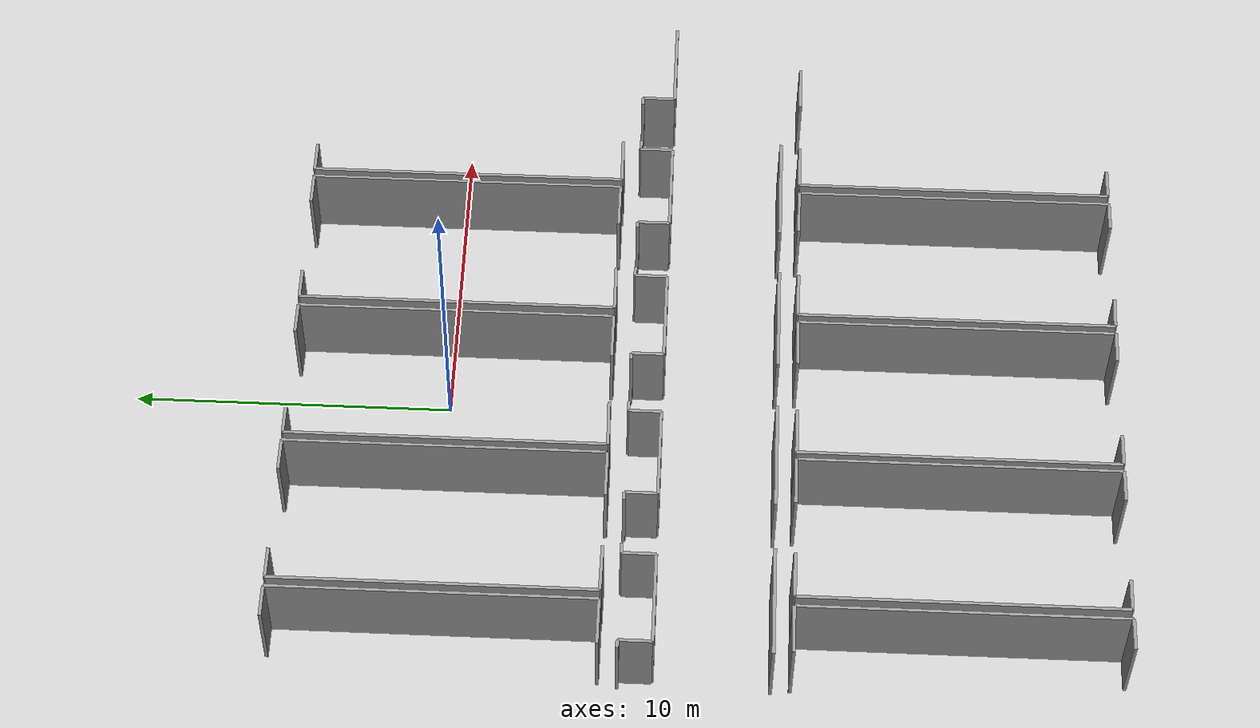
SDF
<sdf version="1.6">
 <world name="default">
  <model name="ground_plane">
   <static>1</static>
   <link name="link">
    <collision name="collision">
     <geometry><plane><normal>0 0 1</normal><size>100 100</size></plane></geometry>
     <surface><friction><ode><mu>100</mu><mu2>50</mu2></ode></friction></surface>
    </collision>
    <visual name="visual">
     <cast_shadows>0</cast_shadows>
     <geometry><plane><normal>0 0 1</normal><size>100 100</size></plane></geometry>
     <material>
      <script><uri>file://media/materials/scripts/gazebo.material</uri><name>Gazebo/Grey</name></script>
     </material>
    </visual>
   </link>
  </model>
  <model name="50055639">
   <static>1</static>
   <link name="Wall_206">
    <collision name="Wall_206_Collision">
     <geometry><box><size>0.253874763579 0.1 2.5</size></box></geometry>
     <pose>0.12693738179 0 1.25 0 0 0</pose>
    </collision>
    <visual name="Wall_206_Visual">
     <pose>0.12693738179 0 1.25 0 0 0</pose>
     <geometry><box><size>0.253874763579 0.1 2.5</size></box></geometry>
     <material>
      <script><uri>file://media/materials/scripts/gazebo.material</uri><name>Gazebo/Grey</name></script>
      <ambient>1 1 1 1</ambient>
     </material>
    </visual>
    <pose>60.6296094137 -26.5515429239 0 0 0 0.0</pose>
   </link>
   <link name="Wall_207">
    <collision name="Wall_207_Collision">
     <geometry><box><size>1.03784003351 0.1 2.5</size></box></geometry>
     <pose>0.518920016756 0 1.25 0 0 0</pose>
    </collision>
    <visual name="Wall_207_Visual">
     <pose>0.518920016756 0 1.25 0 0 0</pose>
     <geometry><box><size>1.03784003351 0.1 2.5</size></box></geometry>
     <material>
      <script><uri>file://media/materials/scripts/gazebo.material</uri><name>Gazebo/Grey</name></script>
      <ambient>1 1 1 1</ambient>
     </material>
    </visual>
    <pose>60.8834841773 -26.5515429239 0 0 0 -1.57079632679</pose>
   </link>
   <link name="Wall_208">
    <collision name="Wall_208_Collision">
     <geometry><box><size>2.98797902994 0.1 2.5</size></box></geometry>
     <pose>1.49398951497 0 1.25 0 0 0</pose>
    </collision>
    <visual name="Wall_208_Visual">
     <pose>1.49398951497 0 1.25 0 0 0</pose>
     <geometry><box><size>2.98797902994 0.1 2.5</size></box></geometry>
     <material>
      <script><uri>file://media/materials/scripts/gazebo.material</uri><name>Gazebo/Grey</name></script>
      <ambient>1 1 1 1</ambient>
     </material>
    </visual>
    <pose>60.8834841773 -27.5893829574 0 0 0 0.0</pose>
   </link>
   <link name="Wall_209">
    <collision name="Wall_209_Collision">
     <geometry><box><size>1.04050571853 0.1 2.5</size></box></geometry>
     <pose>0.520252859265 0 1.25 0 0 0</pose>
    </collision>
    <visual name="Wall_209_Visual">
     <pose>0.520252859265 0 1.25 0 0 0</pose>
     <geometry><box><size>1.04050571853 0.1 2.5</size></box></geometry>
     <material>
      <script><uri>file://media/materials/scripts/gazebo.material</uri><name>Gazebo/Grey</name></script>
      <ambient>1 1 1 1</ambient>
     </material>
    </visual>
    <pose>63.8714632072 -27.5893829574 0 0 0 1.57079632679</pose>
   </link>
   <link name="Wall_210">
    <collision name="Wall_210_Collision">
     <geometry><box><size>0.330037192653 0.1 2.5</size></box></geometry>
     <pose>0.165018596326 0 1.25 0 0 0</pose>
    </collision>
    <visual name="Wall_210_Visual">
     <pose>0.165018596326 0 1.25 0 0 0</pose>
     <geometry><box><size>0.330037192653 0.1 2.5</size></box></geometry>
     <material>
      <script><uri>file://media/materials/scripts/gazebo.material</uri><name>Gazebo/Grey</name></script>
      <ambient>1 1 1 1</ambient>
     </material>
    </visual>
    <pose>63.8714632072 -26.5488772389 0 0 0 0.0</pose>
   </link>
   <link name="Wall_211">
    <collision name="Wall_211_Collision">
     <geometry><box><size>0.252351514998 0.1 2.5</size></box></geometry>
     <pose>0.126175757499 0 1.25 0 0 0</pose>
    </collision>
    <visual name="Wall_211_Visual">
     <pose>0.126175757499 0 1.25 0 0 0</pose>
     <geometry><box><size>0.252351514998 0.1 2.5</size></box></geometry>
     <material>
      <script><uri>file://media/materials/scripts/gazebo.material</uri><name>Gazebo/Grey</name></script>
      <ambient>1 1 1 1</ambient>
     </material>
    </visual>
    <pose>65.7644803818 -26.5488772389 0 0 0 0.0</pose>
   </link>
   <link name="Wall_212">
    <collision name="Wall_212_Collision">
     <geometry><box><size>1.01867248886 0.1 2.5</size></box></geometry>
     <pose>0.509336244431 0 1.25 0 0 0</pose>
    </collision>
    <visual name="Wall_212_Visual">
     <pose>0.509336244431 0 1.25 0 0 0</pose>
     <geometry><box><size>1.01867248886 0.1 2.5</size></box></geometry>
     <material>
      <script><uri>file://media/materials/scripts/gazebo.material</uri><name>Gazebo/Grey</name></script>
      <ambient>1 1 1 1</ambient>
     </material>
    </visual>
    <pose>66.0168318968 -26.5488772389 0 0 0 -1.57079632679</pose>
   </link>
   <link name="Wall_213">
    <collision name="Wall_213_Collision">
     <geometry><box><size>2.97883953846 0.1 2.5</size></box></geometry>
     <pose>1.48941976923 0 1.25 0 0 0</pose>
    </collision>
    <visual name="Wall_213_Visual">
     <pose>1.48941976923 0 1.25 0 0 0</pose>
     <geometry><box><size>2.97883953846 0.1 2.5</size></box></geometry>
     <material>
      <script><uri>file://media/materials/scripts/gazebo.material</uri><name>Gazebo/Grey</name></script>
      <ambient>1 1 1 1</ambient>
     </material>
    </visual>
    <pose>66.0168318968 -27.5675497277 0 0 0 0.0</pose>
   </link>
   <link name="Wall_214">
    <collision name="Wall_214_Collision">
     <geometry><box><size>1.00344000305 0.1 2.5</size></box></geometry>
     <pose>0.501720001523 0 1.25 0 0 0</pose>
    </collision>
    <visual name="Wall_214_Visual">
     <pose>0.501720001523 0 1.25 0 0 0</pose>
     <geometry><box><size>1.00344000305 0.1 2.5</size></box></geometry>
     <material>
      <script><uri>file://media/materials/scripts/gazebo.material</uri><name>Gazebo/Grey</name></script>
      <ambient>1 1 1 1</ambient>
     </material>
    </visual>
    <pose>68.9956714353 -27.5675497277 0 0 0 1.57079632679</pose>
   </link>
   <link name="Wall_215">
    <collision name="Wall_215_Collision">
     <geometry><box><size>0.334480001016 0.1 2.5</size></box></geometry>
     <pose>0.167240000508 0 1.25 0 0 0</pose>
    </collision>
    <visual name="Wall_215_Visual">
     <pose>0.167240000508 0 1.25 0 0 0</pose>
     <geometry><box><size>0.334480001016 0.1 2.5</size></box></geometry>
     <material>
      <script><uri>file://media/materials/scripts/gazebo.material</uri><name>Gazebo/Grey</name></script>
      <ambient>1 1 1 1</ambient>
     </material>
    </visual>
    <pose>68.9956714353 -26.5641097247 0 0 0 0.0</pose>
   </link>
   <link name="Wall_216">
    <collision name="Wall_216_Collision">
     <geometry><box><size>0.230264410566 0.1 2.5</size></box></geometry>
     <pose>0.115132205283 0 1.25 0 0 0</pose>
    </collision>
    <visual name="Wall_216_Visual">
     <pose>0.115132205283 0 1.25 0 0 0</pose>
     <geometry><box><size>0.230264410566 0.1 2.5</size></box></geometry>
     <material>
      <script><uri>file://media/materials/scripts/gazebo.material</uri><name>Gazebo/Grey</name></script>
      <ambient>1 1 1 1</ambient>
     </material>
    </visual>
    <pose>70.9262620749 -26.5641097247 0 0 0 0.0</pose>
   </link>
   <link name="Wall_217">
    <collision name="Wall_217_Collision">
     <geometry><box><size>1.01181787024 0.1 2.5</size></box></geometry>
     <pose>0.505908935122 0 1.25 0 0 0</pose>
    </collision>
    <visual name="Wall_217_Visual">
     <pose>0.505908935122 0 1.25 0 0 0</pose>
     <geometry><box><size>1.01181787024 0.1 2.5</size></box></geometry>
     <material>
      <script><uri>file://media/materials/scripts/gazebo.material</uri><name>Gazebo/Grey</name></script>
      <ambient>1 1 1 1</ambient>
     </material>
    </visual>
    <pose>71.1565264855 -26.5641097247 0 0 0 -1.57079632679</pose>
   </link>
   <link name="Wall_218">
    <collision name="Wall_218_Collision">
     <geometry><box><size>3.01387425583 0.1 2.5</size></box></geometry>
     <pose>1.50693712791 0 1.25 0 0 0</pose>
    </collision>
    <visual name="Wall_218_Visual">
     <pose>1.50693712791 0 1.25 0 0 0</pose>
     <geometry><box><size>3.01387425583 0.1 2.5</size></box></geometry>
     <material>
      <script><uri>file://media/materials/scripts/gazebo.material</uri><name>Gazebo/Grey</name></script>
      <ambient>1 1 1 1</ambient>
     </material>
    </visual>
    <pose>71.1565264855 -27.5759275949 0 0 0 0.0</pose>
   </link>
   <link name="Wall_219">
    <collision name="Wall_219_Collision">
     <geometry><box><size>1.00788281141 0.1 2.5</size></box></geometry>
     <pose>0.503941405705 0 1.25 0 0 0</pose>
    </collision>
    <visual name="Wall_219_Visual">
     <pose>0.503941405705 0 1.25 0 0 0</pose>
     <geometry><box><size>1.00788281141 0.1 2.5</size></box></geometry>
     <material>
      <script><uri>file://media/materials/scripts/gazebo.material</uri><name>Gazebo/Grey</name></script>
      <ambient>1 1 1 1</ambient>
     </material>
    </visual>
    <pose>74.1704007413 -27.5759275949 0 0 0 1.57079632679</pose>
   </link>
   <link name="Wall_220">
    <collision name="Wall_220_Collision">
     <geometry><box><size>0.315312456365 0.1 2.5</size></box></geometry>
     <pose>0.157656228183 0 1.25 0 0 0</pose>
    </collision>
    <visual name="Wall_220_Visual">
     <pose>0.157656228183 0 1.25 0 0 0</pose>
     <geometry><box><size>0.315312456365 0.1 2.5</size></box></geometry>
     <material>
      <script><uri>file://media/materials/scripts/gazebo.material</uri><name>Gazebo/Grey</name></script>
      <ambient>1 1 1 1</ambient>
     </material>
    </visual>
    <pose>74.1704007413 -26.5680447835 0 0 0 0.0</pose>
   </link>
   <link name="Wall_221">
    <collision name="Wall_221_Collision">
     <geometry><box><size>0.217697609769 0.1 2.5</size></box></geometry>
     <pose>0.108848804885 0 1.25 0 0 0</pose>
    </collision>
    <visual name="Wall_221_Visual">
     <pose>0.108848804885 0 1.25 0 0 0</pose>
     <geometry><box><size>0.217697609769 0.1 2.5</size></box></geometry>
     <material>
      <script><uri>file://media/materials/scripts/gazebo.material</uri><name>Gazebo/Grey</name></script>
      <ambient>1 1 1 1</ambient>
     </material>
    </visual>
    <pose>76.0823315858 -26.5680447835 0 0 0 0.0</pose>
   </link>
   <link name="Wall_222">
    <collision name="Wall_222_Collision">
     <geometry><box><size>1.01740311504 0.1 2.5</size></box></geometry>
     <pose>0.508701557522 0 1.25 0 0 0</pose>
    </collision>
    <visual name="Wall_222_Visual">
     <pose>0.508701557522 0 1.25 0 0 0</pose>
     <geometry><box><size>1.01740311504 0.1 2.5</size></box></geometry>
     <material>
      <script><uri>file://media/materials/scripts/gazebo.material</uri><name>Gazebo/Grey</name></script>
      <ambient>1 1 1 1</ambient>
     </material>
    </visual>
    <pose>76.3000291956 -26.5680447835 0 0 0 -1.57079632679</pose>
   </link>
   <link name="Wall_223">
    <collision name="Wall_223_Collision">
     <geometry><box><size>3.00549638863 0.1 2.5</size></box></geometry>
     <pose>1.50274819432 0 1.25 0 0 0</pose>
    </collision>
    <visual name="Wall_223_Visual">
     <pose>1.50274819432 0 1.25 0 0 0</pose>
     <geometry><box><size>3.00549638863 0.1 2.5</size></box></geometry>
     <material>
      <script><uri>file://media/materials/scripts/gazebo.material</uri><name>Gazebo/Grey</name></script>
      <ambient>1 1 1 1</ambient>
     </material>
    </visual>
    <pose>76.3000291956 -27.5854478986 0 0 0 0.0</pose>
   </link>
   <link name="Wall_224">
    <collision name="Wall_224_Collision">
     <geometry><box><size>1.02933522893 0.1 2.5</size></box></geometry>
     <pose>0.514667614466 0 1.25 0 0 0</pose>
    </collision>
    <visual name="Wall_224_Visual">
     <pose>0.514667614466 0 1.25 0 0 0</pose>
     <geometry><box><size>1.02933522893 0.1 2.5</size></box></geometry>
     <material>
      <script><uri>file://media/materials/scripts/gazebo.material</uri><name>Gazebo/Grey</name></script>
      <ambient>1 1 1 1</ambient>
     </material>
    </visual>
    <pose>79.3055255842 -27.5854478986 0 0 0 1.57079632679</pose>
   </link>
   <link name="Wall_225">
    <collision name="Wall_225_Collision">
     <geometry><box><size>0.341588494396 0.1 2.5</size></box></geometry>
     <pose>0.170794247198 0 1.25 0 0 0</pose>
    </collision>
    <visual name="Wall_225_Visual">
     <pose>0.170794247198 0 1.25 0 0 0</pose>
     <geometry><box><size>0.341588494396 0.1 2.5</size></box></geometry>
     <material>
      <script><uri>file://media/materials/scripts/gazebo.material</uri><name>Gazebo/Grey</name></script>
      <ambient>1 1 1 1</ambient>
     </material>
    </visual>
    <pose>79.3055255842 -26.5561126696 0 0 0 0.0</pose>
   </link>
   <link name="Wall_226">
    <collision name="Wall_226_Collision">
     <geometry><box><size>0.24613158329 0.1 2.5</size></box></geometry>
     <pose>0.123065791645 0 1.25 0 0 0</pose>
    </collision>
    <visual name="Wall_226_Visual">
     <pose>0.123065791645 0 1.25 0 0 0</pose>
     <geometry><box><size>0.24613158329 0.1 2.5</size></box></geometry>
     <material>
      <script><uri>file://media/materials/scripts/gazebo.material</uri><name>Gazebo/Grey</name></script>
      <ambient>1 1 1 1</ambient>
     </material>
    </visual>
    <pose>81.2139021821 -26.5561126696 0 0 0 0.0</pose>
   </link>
   <link name="Wall_227">
    <collision name="Wall_227_Collision">
     <geometry><box><size>1.03327028777 0.1 2.5</size></box></geometry>
     <pose>0.516635143884 0 1.25 0 0 0</pose>
    </collision>
    <visual name="Wall_227_Visual">
     <pose>0.516635143884 0 1.25 0 0 0</pose>
     <geometry><box><size>1.03327028777 0.1 2.5</size></box></geometry>
     <material>
      <script><uri>file://media/materials/scripts/gazebo.material</uri><name>Gazebo/Grey</name></script>
      <ambient>1 1 1 1</ambient>
     </material>
    </visual>
    <pose>81.4600337653 -26.5561126696 0 0 0 -1.57079632679</pose>
   </link>
   <link name="Wall_228">
    <collision name="Wall_228_Collision">
     <geometry><box><size>2.99762627096 0.1 2.5</size></box></geometry>
     <pose>1.49881313548 0 1.25 0 0 0</pose>
    </collision>
    <visual name="Wall_228_Visual">
     <pose>1.49881313548 0 1.25 0 0 0</pose>
     <geometry><box><size>2.99762627096 0.1 2.5</size></box></geometry>
     <material>
      <script><uri>file://media/materials/scripts/gazebo.material</uri><name>Gazebo/Grey</name></script>
      <ambient>1 1 1 1</ambient>
     </material>
    </visual>
    <pose>81.4600337653 -27.5893829574 0 0 0 0.0</pose>
   </link>
   <link name="Wall_250">
    <collision name="Wall_250_Collision">
     <geometry><box><size>3.58534634865 0.1 2.5</size></box></geometry>
     <pose>1.79267317432 0 1.25 0 0 0</pose>
    </collision>
    <visual name="Wall_250_Visual">
     <pose>1.79267317432 0 1.25 0 0 0</pose>
     <geometry><box><size>3.58534634865 0.1 2.5</size></box></geometry>
     <material>
      <script><uri>file://media/materials/scripts/gazebo.material</uri><name>Gazebo/Grey</name></script>
      <ambient>1 1 1 1</ambient>
     </material>
    </visual>
    <pose>79.6676779345 -31.1310628467 0 0 0 3.14159265359</pose>
   </link>
   <link name="Wall_251">
    <collision name="Wall_251_Collision">
     <geometry><box><size>3.54777288364 0.1 2.5</size></box></geometry>
     <pose>1.77388644182 0 1.25 0 0 0</pose>
    </collision>
    <visual name="Wall_251_Visual">
     <pose>1.77388644182 0 1.25 0 0 0</pose>
     <geometry><box><size>3.54777288364 0.1 2.5</size></box></geometry>
     <material>
      <script><uri>file://media/materials/scripts/gazebo.material</uri><name>Gazebo/Grey</name></script>
      <ambient>1 1 1 1</ambient>
     </material>
    </visual>
    <pose>74.4872364463 -31.1310628467 0 0 0 3.14159265359</pose>
   </link>
   <link name="Wall_252">
    <collision name="Wall_252_Collision">
     <geometry><box><size>3.57011386283 0.1 2.5</size></box></geometry>
     <pose>1.78505693142 0 1.25 0 0 0</pose>
    </collision>
    <visual name="Wall_252_Visual">
     <pose>1.78505693142 0 1.25 0 0 0</pose>
     <geometry><box><size>3.57011386283 0.1 2.5</size></box></geometry>
     <material>
      <script><uri>file://media/materials/scripts/gazebo.material</uri><name>Gazebo/Grey</name></script>
      <ambient>1 1 1 1</ambient>
     </material>
    </visual>
    <pose>69.3592200967 -31.1310628467 0 0 0 3.14159265359</pose>
   </link>
   <link name="Wall_253">
    <collision name="Wall_253_Collision">
     <geometry><box><size>3.58864672057 0.1 2.5</size></box></geometry>
     <pose>1.79432336029 0 1.25 0 0 0</pose>
    </collision>
    <visual name="Wall_253_Visual">
     <pose>1.79432336029 0 1.25 0 0 0</pose>
     <geometry><box><size>3.58864672057 0.1 2.5</size></box></geometry>
     <material>
      <script><uri>file://media/materials/scripts/gazebo.material</uri><name>Gazebo/Grey</name></script>
      <ambient>1 1 1 1</ambient>
     </material>
    </visual>
    <pose>64.2266340014 -31.1310628467 0 0 0 3.14159265359</pose>
   </link>
   <link name="Wall_264">
    <collision name="Wall_264_Collision">
     <geometry><box><size>1.01638761599 0.1 2.5</size></box></geometry>
     <pose>0.508193807995 0 1.25 0 0 0</pose>
    </collision>
    <visual name="Wall_264_Visual">
     <pose>0.508193807995 0 1.25 0 0 0</pose>
     <geometry><box><size>1.01638761599 0.1 2.5</size></box></geometry>
     <material>
      <script><uri>file://media/materials/scripts/gazebo.material</uri><name>Gazebo/Grey</name></script>
      <ambient>1 1 1 1</ambient>
     </material>
    </visual>
    <pose>61.246144277 -15.9908605085 0 0 0 0.0</pose>
   </link>
   <link name="Wall_265">
    <collision name="Wall_265_Collision">
     <geometry><box><size>9.96674240597 0.1 2.5</size></box></geometry>
     <pose>4.98337120299 0 1.25 0 0 0</pose>
    </collision>
    <visual name="Wall_265_Visual">
     <pose>4.98337120299 0 1.25 0 0 0</pose>
     <geometry><box><size>9.96674240597 0.1 2.5</size></box></geometry>
     <material>
      <script><uri>file://media/materials/scripts/gazebo.material</uri><name>Gazebo/Grey</name></script>
      <ambient>1 1 1 1</ambient>
     </material>
    </visual>
    <pose>62.262531893 -15.9908605085 0 0 0 -1.57079632679</pose>
   </link>
   <link name="Wall_266">
    <collision name="Wall_266_Collision">
     <geometry><box><size>1.5209637086 0.1 2.5</size></box></geometry>
     <pose>0.760481854301 0 1.25 0 0 0</pose>
    </collision>
    <visual name="Wall_266_Visual">
     <pose>0.760481854301 0 1.25 0 0 0</pose>
     <geometry><box><size>1.5209637086 0.1 2.5</size></box></geometry>
     <material>
      <script><uri>file://media/materials/scripts/gazebo.material</uri><name>Gazebo/Grey</name></script>
      <ambient>1 1 1 1</ambient>
     </material>
    </visual>
    <pose>62.262531893 -25.9576029145 0 0 0 3.14159265359</pose>
   </link>
   <link name="Wall_268">
    <collision name="Wall_268_Collision">
     <geometry><box><size>9.96433059572 0.1 2.5</size></box></geometry>
     <pose>4.98216529786 0 1.25 0 0 0</pose>
    </collision>
    <visual name="Wall_268_Visual">
     <pose>4.98216529786 0 1.25 0 0 0</pose>
     <geometry><box><size>9.96433059572 0.1 2.5</size></box></geometry>
     <material>
      <script><uri>file://media/materials/scripts/gazebo.material</uri><name>Gazebo/Grey</name></script>
      <ambient>1 1 1 1</ambient>
     </material>
    </visual>
    <pose>62.5613424897 -25.966742406 0 0 0 1.57079632679</pose>
   </link>
   <link name="Wall_269">
    <collision name="Wall_269_Collision">
     <geometry><box><size>1.00547100116 0.1 2.5</size></box></geometry>
     <pose>0.502735500578 0 1.25 0 0 0</pose>
    </collision>
    <visual name="Wall_269_Visual">
     <pose>0.502735500578 0 1.25 0 0 0</pose>
     <geometry><box><size>1.00547100116 0.1 2.5</size></box></geometry>
     <material>
      <script><uri>file://media/materials/scripts/gazebo.material</uri><name>Gazebo/Grey</name></script>
      <ambient>1 1 1 1</ambient>
     </material>
    </visual>
    <pose>62.5613424897 -16.0024118103 0 0 0 0.0</pose>
   </link>
   <link name="Wall_270">
    <collision name="Wall_270_Collision">
     <geometry><box><size>1.06030795009 0.1 2.5</size></box></geometry>
     <pose>0.530153975044 0 1.25 0 0 0</pose>
    </collision>
    <visual name="Wall_270_Visual">
     <pose>0.530153975044 0 1.25 0 0 0</pose>
     <geometry><box><size>1.06030795009 0.1 2.5</size></box></geometry>
     <material>
      <script><uri>file://media/materials/scripts/gazebo.material</uri><name>Gazebo/Grey</name></script>
      <ambient>1 1 1 1</ambient>
     </material>
    </visual>
    <pose>66.3829193059 -16.0024118103 0 0 0 0.0</pose>
   </link>
   <link name="Wall_271">
    <collision name="Wall_271_Collision">
     <geometry><box><size>9.9756280227 0.1 2.5</size></box></geometry>
     <pose>4.98781401135 0 1.25 0 0 0</pose>
    </collision>
    <visual name="Wall_271_Visual">
     <pose>4.98781401135 0 1.25 0 0 0</pose>
     <geometry><box><size>9.9756280227 0.1 2.5</size></box></geometry>
     <material>
      <script><uri>file://media/materials/scripts/gazebo.material</uri><name>Gazebo/Grey</name></script>
      <ambient>1 1 1 1</ambient>
     </material>
    </visual>
    <pose>67.443227256 -16.0024118103 0 0 0 -1.57079632679</pose>
   </link>
   <link name="Wall_272">
    <collision name="Wall_272_Collision">
     <geometry><box><size>1.54812830831 0.1 2.5</size></box></geometry>
     <pose>0.774064154153 0 1.25 0 0 0</pose>
    </collision>
    <visual name="Wall_272_Visual">
     <pose>0.774064154153 0 1.25 0 0 0</pose>
     <geometry><box><size>1.54812830831 0.1 2.5</size></box></geometry>
     <material>
      <script><uri>file://media/materials/scripts/gazebo.material</uri><name>Gazebo/Grey</name></script>
      <ambient>1 1 1 1</ambient>
     </material>
    </visual>
    <pose>67.443227256 -25.978039833 0 0 0 3.14159265359</pose>
   </link>
   <link name="Wall_273">
    <collision name="Wall_273_Collision">
     <geometry><box><size>1.52329047552 0.1 2.5</size></box></geometry>
     <pose>0.761645237762 0 1.25 0 0 0</pose>
    </collision>
    <visual name="Wall_273_Visual">
     <pose>0.761645237762 0 1.25 0 0 0</pose>
     <geometry><box><size>1.52329047552 0.1 2.5</size></box></geometry>
     <material>
      <script><uri>file://media/materials/scripts/gazebo.material</uri><name>Gazebo/Grey</name></script>
      <ambient>1 1 1 1</ambient>
     </material>
    </visual>
    <pose>64.0845910712 -25.978039833 0 0 0 3.13417612291</pose>
   </link>
   <link name="Wall_274">
    <collision name="Wall_274_Collision">
     <geometry><box><size>9.97740514604 0.1 2.5</size></box></geometry>
     <pose>4.98870257302 0 1.25 0 0 0</pose>
    </collision>
    <visual name="Wall_274_Visual">
     <pose>4.98870257302 0 1.25 0 0 0</pose>
     <geometry><box><size>9.97740514604 0.1 2.5</size></box></geometry>
     <material>
      <script><uri>file://media/materials/scripts/gazebo.material</uri><name>Gazebo/Grey</name></script>
      <ambient>1 1 1 1</ambient>
     </material>
    </visual>
    <pose>67.7299788015 -25.9826095787 0 0 0 1.57079632679</pose>
   </link>
   <link name="Wall_275">
    <collision name="Wall_275_Collision">
     <geometry><box><size>0.989223016286 0.1 2.5</size></box></geometry>
     <pose>0.494611508143 0 1.25 0 0 0</pose>
    </collision>
    <visual name="Wall_275_Visual">
     <pose>0.494611508143 0 1.25 0 0 0</pose>
     <geometry><box><size>0.989223016286 0.1 2.5</size></box></geometry>
     <material>
      <script><uri>file://media/materials/scripts/gazebo.material</uri><name>Gazebo/Grey</name></script>
      <ambient>1 1 1 1</ambient>
     </material>
    </visual>
    <pose>67.7299788015 -16.0052044327 0 0 0 0.0</pose>
   </link>
   <link name="Wall_276">
    <collision name="Wall_276_Collision">
     <geometry><box><size>1.02590791962 0.1 2.5</size></box></geometry>
     <pose>0.512953959812 0 1.25 0 0 0</pose>
    </collision>
    <visual name="Wall_276_Visual">
     <pose>0.512953959812 0 1.25 0 0 0</pose>
     <geometry><box><size>1.02590791962 0.1 2.5</size></box></geometry>
     <material>
      <script><uri>file://media/materials/scripts/gazebo.material</uri><name>Gazebo/Grey</name></script>
      <ambient>1 1 1 1</ambient>
     </material>
    </visual>
    <pose>71.5251526422 -16.0052044327 0 0 0 0.0</pose>
   </link>
   <link name="Wall_277">
    <collision name="Wall_277_Collision">
     <geometry><box><size>9.94668629965 0.1 2.5</size></box></geometry>
     <pose>4.97334314982 0 1.25 0 0 0</pose>
    </collision>
    <visual name="Wall_277_Visual">
     <pose>4.97334314982 0 1.25 0 0 0</pose>
     <geometry><box><size>9.94668629965 0.1 2.5</size></box></geometry>
     <material>
      <script><uri>file://media/materials/scripts/gazebo.material</uri><name>Gazebo/Grey</name></script>
      <ambient>1 1 1 1</ambient>
     </material>
    </visual>
    <pose>72.5510605618 -16.0052044327 0 0 0 -1.57079632679</pose>
   </link>
   <link name="Wall_278">
    <collision name="Wall_278_Collision">
     <geometry><box><size>1.51931352264 0.1 2.5</size></box></geometry>
     <pose>0.75965676132 0 1.25 0 0 0</pose>
    </collision>
    <visual name="Wall_278_Visual">
     <pose>0.75965676132 0 1.25 0 0 0</pose>
     <geometry><box><size>1.51931352264 0.1 2.5</size></box></geometry>
     <material>
      <script><uri>file://media/materials/scripts/gazebo.material</uri><name>Gazebo/Grey</name></script>
      <ambient>1 1 1 1</ambient>
     </material>
    </visual>
    <pose>72.5510605618 -25.9518907323 0 0 0 3.14159265359</pose>
   </link>
   <link name="Wall_279">
    <collision name="Wall_279_Collision">
     <geometry><box><size>1.54602171391 0.1 2.5</size></box></geometry>
     <pose>0.773010856954 0 1.25 0 0 0</pose>
    </collision>
    <visual name="Wall_279_Visual">
     <pose>0.773010856954 0 1.25 0 0 0</pose>
     <geometry><box><size>1.54602171391 0.1 2.5</size></box></geometry>
     <material>
      <script><uri>file://media/materials/scripts/gazebo.material</uri><name>Gazebo/Grey</name></script>
      <ambient>1 1 1 1</ambient>
     </material>
    </visual>
    <pose>69.2756952995 -25.9518907323 0 0 0 -3.1217217373</pose>
   </link>
   <link name="Wall_280">
    <collision name="Wall_280_Collision">
     <geometry><box><size>9.96471140786 0.1 2.5</size></box></geometry>
     <pose>4.98235570393 0 1.25 0 0 0</pose>
    </collision>
    <visual name="Wall_280_Visual">
     <pose>4.98235570393 0 1.25 0 0 0</pose>
     <geometry><box><size>9.96471140786 0.1 2.5</size></box></geometry>
     <material>
      <script><uri>file://media/materials/scripts/gazebo.material</uri><name>Gazebo/Grey</name></script>
      <ambient>1 1 1 1</ambient>
     </material>
    </visual>
    <pose>72.8817324414 -25.9661077191 0 0 0 1.57079632679</pose>
   </link>
   <link name="Wall_281">
    <collision name="Wall_281_Collision">
     <geometry><box><size>0.994300511558 0.1 2.5</size></box></geometry>
     <pose>0.497150255779 0 1.25 0 0 0</pose>
    </collision>
    <visual name="Wall_281_Visual">
     <pose>0.497150255779 0 1.25 0 0 0</pose>
     <geometry><box><size>0.994300511558 0.1 2.5</size></box></geometry>
     <material>
      <script><uri>file://media/materials/scripts/gazebo.material</uri><name>Gazebo/Grey</name></script>
      <ambient>1 1 1 1</ambient>
     </material>
    </visual>
    <pose>72.8817324414 -16.0013963112 0 0 0 0.0</pose>
   </link>
   <link name="Wall_282">
    <collision name="Wall_282_Collision">
     <geometry><box><size>1.04520240166 0.1 2.5</size></box></geometry>
     <pose>0.522601200828 0 1.25 0 0 0</pose>
    </collision>
    <visual name="Wall_282_Visual">
     <pose>0.522601200828 0 1.25 0 0 0</pose>
     <geometry><box><size>1.04520240166 0.1 2.5</size></box></geometry>
     <material>
      <script><uri>file://media/materials/scripts/gazebo.material</uri><name>Gazebo/Grey</name></script>
      <ambient>1 1 1 1</ambient>
     </material>
    </visual>
    <pose>76.6701786009 -16.0013963112 0 0 0 0.0</pose>
   </link>
   <link name="Wall_283">
    <collision name="Wall_283_Collision">
     <geometry><box><size>9.9546833547 0.1 2.5</size></box></geometry>
     <pose>4.97734167735 0 1.25 0 0 0</pose>
    </collision>
    <visual name="Wall_283_Visual">
     <pose>4.97734167735 0 1.25 0 0 0</pose>
     <geometry><box><size>9.9546833547 0.1 2.5</size></box></geometry>
     <material>
      <script><uri>file://media/materials/scripts/gazebo.material</uri><name>Gazebo/Grey</name></script>
      <ambient>1 1 1 1</ambient>
     </material>
    </visual>
    <pose>77.7153810026 -16.0013963112 0 0 0 -1.57079632679</pose>
   </link>
   <link name="Wall_284">
    <collision name="Wall_284_Collision">
     <geometry><box><size>1.5251526422 0.1 2.5</size></box></geometry>
     <pose>0.762576321101 0 1.25 0 0 0</pose>
    </collision>
    <visual name="Wall_284_Visual">
     <pose>0.762576321101 0 1.25 0 0 0</pose>
     <geometry><box><size>1.5251526422 0.1 2.5</size></box></geometry>
     <material>
      <script><uri>file://media/materials/scripts/gazebo.material</uri><name>Gazebo/Grey</name></script>
      <ambient>1 1 1 1</ambient>
     </material>
    </visual>
    <pose>77.7153810026 -25.9560796659 0 0 0 3.14159265359</pose>
   </link>
   <link name="Wall_285">
    <collision name="Wall_285_Collision">
     <geometry><box><size>1.54549515749 0.1 2.5</size></box></geometry>
     <pose>0.772747578746 0 1.25 0 0 0</pose>
    </collision>
    <visual name="Wall_285_Visual">
     <pose>0.772747578746 0 1.25 0 0 0</pose>
     <geometry><box><size>1.54549515749 0.1 2.5</size></box></geometry>
     <material>
      <script><uri>file://media/materials/scripts/gazebo.material</uri><name>Gazebo/Grey</name></script>
      <ambient>1 1 1 1</ambient>
     </material>
    </visual>
    <pose>74.4271950647 -25.9560796659 0 0 0 -3.13510403829</pose>
   </link>
   <link name="Wall_286">
    <collision name="Wall_286_Collision">
     <geometry><box><size>9.9958110664 0.1 2.5</size></box></geometry>
     <pose>4.9979055332 0 1.25 0 0 0</pose>
    </collision>
    <visual name="Wall_286_Visual">
     <pose>4.9979055332 0 1.25 0 0 0</pose>
     <geometry><box><size>9.9958110664 0.1 2.5</size></box></geometry>
     <material>
      <script><uri>file://media/materials/scripts/gazebo.material</uri><name>Gazebo/Grey</name></script>
      <ambient>1 1 1 1</ambient>
     </material>
    </visual>
    <pose>78.0092410414 -25.9898450095 0 0 0 1.57079632679</pose>
   </link>
   <link name="Wall_287">
    <collision name="Wall_287_Collision">
     <geometry><box><size>1.02336917199 0.1 2.5</size></box></geometry>
     <pose>0.511684585994 0 1.25 0 0 0</pose>
    </collision>
    <visual name="Wall_287_Visual">
     <pose>0.511684585994 0 1.25 0 0 0</pose>
     <geometry><box><size>1.02336917199 0.1 2.5</size></box></geometry>
     <material>
      <script><uri>file://media/materials/scripts/gazebo.material</uri><name>Gazebo/Grey</name></script>
      <ambient>1 1 1 1</ambient>
     </material>
    </visual>
    <pose>78.0092410414 -15.9940339431 0 0 0 0.0</pose>
   </link>
   <link name="Wall_291">
    <collision name="Wall_291_Collision">
     <geometry><box><size>1.57144854029 0.1 2.5</size></box></geometry>
     <pose>0.785724270143 0 1.25 0 0 0</pose>
    </collision>
    <visual name="Wall_291_Visual">
     <pose>0.785724270143 0 1.25 0 0 0</pose>
     <geometry><box><size>1.57144854029 0.1 2.5</size></box></geometry>
     <material>
      <script><uri>file://media/materials/scripts/gazebo.material</uri><name>Gazebo/Grey</name></script>
      <ambient>1 1 1 1</ambient>
     </material>
    </visual>
    <pose>79.5805988906 -25.9729623377 0 0 0 -3.13084906503</pose>
   </link>
   <link name="Wall_335">
    <collision name="Wall_335_Collision">
     <geometry><box><size>9.9504944211 0.1 2.5</size></box></geometry>
     <pose>4.97524721055 0 1.25 0 0 0</pose>
    </collision>
    <visual name="Wall_335_Visual">
     <pose>4.97524721055 0 1.25 0 0 0</pose>
     <geometry><box><size>9.9504944211 0.1 2.5</size></box></geometry>
     <material>
      <script><uri>file://media/materials/scripts/gazebo.material</uri><name>Gazebo/Grey</name></script>
      <ambient>1 1 1 1</ambient>
     </material>
    </visual>
    <pose>78.0366595159 -41.6959341957 0 0 0 1.57079632679</pose>
   </link>
   <link name="Wall_336">
    <collision name="Wall_336_Collision">
     <geometry><box><size>1.51106259282 0.1 2.5</size></box></geometry>
     <pose>0.755531296411 0 1.25 0 0 0</pose>
    </collision>
    <visual name="Wall_336_Visual">
     <pose>0.755531296411 0 1.25 0 0 0</pose>
     <geometry><box><size>1.51106259282 0.1 2.5</size></box></geometry>
     <material>
      <script><uri>file://media/materials/scripts/gazebo.material</uri><name>Gazebo/Grey</name></script>
      <ambient>1 1 1 1</ambient>
     </material>
    </visual>
    <pose>78.0366595159 -31.7454397746 0 0 0 0.0</pose>
   </link>
   <link name="Wall_337">
    <collision name="Wall_337_Collision">
     <geometry><box><size>1.56132979601 0.1 2.5</size></box></geometry>
     <pose>0.780664898006 0 1.25 0 0 0</pose>
    </collision>
    <visual name="Wall_337_Visual">
     <pose>0.780664898006 0 1.25 0 0 0</pose>
     <geometry><box><size>1.56132979601 0.1 2.5</size></box></geometry>
     <material>
      <script><uri>file://media/materials/scripts/gazebo.material</uri><name>Gazebo/Grey</name></script>
      <ambient>1 1 1 1</ambient>
     </material>
    </visual>
    <pose>81.3198948958 -31.7454397746 0 0 0 0.0</pose>
   </link>
   <link name="Wall_340">
    <collision name="Wall_340_Collision">
     <geometry><box><size>1.00434014817 0.1 2.5</size></box></geometry>
     <pose>0.502170074085 0 1.25 0 0 0</pose>
    </collision>
    <visual name="Wall_340_Visual">
     <pose>0.502170074085 0 1.25 0 0 0</pose>
     <geometry><box><size>1.00434014817 0.1 2.5</size></box></geometry>
     <material>
      <script><uri>file://media/materials/scripts/gazebo.material</uri><name>Gazebo/Grey</name></script>
      <ambient>1 1 1 1</ambient>
     </material>
    </visual>
    <pose>79.0409880806 -41.7007578162 0 0 0 3.13678985938</pose>
   </link>
   <link name="Wall_341">
    <collision name="Wall_341_Collision">
     <geometry><box><size>9.94706711179 0.1 2.5</size></box></geometry>
     <pose>4.9735335559 0 1.25 0 0 0</pose>
    </collision>
    <visual name="Wall_341_Visual">
     <pose>4.9735335559 0 1.25 0 0 0</pose>
     <geometry><box><size>9.94706711179 0.1 2.5</size></box></geometry>
     <material>
      <script><uri>file://media/materials/scripts/gazebo.material</uri><name>Gazebo/Grey</name></script>
      <ambient>1 1 1 1</ambient>
     </material>
    </visual>
    <pose>72.8671346425 -41.6862869546 0 0 0 1.57079632679</pose>
   </link>
   <link name="Wall_342">
    <collision name="Wall_342_Collision">
     <geometry><box><size>1.53708475609 0.1 2.5</size></box></geometry>
     <pose>0.768542378045 0 1.25 0 0 0</pose>
    </collision>
    <visual name="Wall_342_Visual">
     <pose>0.768542378045 0 1.25 0 0 0</pose>
     <geometry><box><size>1.53708475609 0.1 2.5</size></box></geometry>
     <material>
      <script><uri>file://media/materials/scripts/gazebo.material</uri><name>Gazebo/Grey</name></script>
      <ambient>1 1 1 1</ambient>
     </material>
    </visual>
    <pose>72.8671346425 -31.7392198429 0 0 0 0.0</pose>
   </link>
   <link name="Wall_343">
    <collision name="Wall_343_Collision">
     <geometry><box><size>1.53276888511 0.1 2.5</size></box></geometry>
     <pose>0.766384442554 0 1.25 0 0 0</pose>
    </collision>
    <visual name="Wall_343_Visual">
     <pose>0.766384442554 0 1.25 0 0 0</pose>
     <geometry><box><size>1.53276888511 0.1 2.5</size></box></geometry>
     <material>
      <script><uri>file://media/materials/scripts/gazebo.material</uri><name>Gazebo/Grey</name></script>
      <ambient>1 1 1 1</ambient>
     </material>
    </visual>
    <pose>76.1802003072 -31.7392198429 0 0 0 0.0</pose>
   </link>
   <link name="Wall_344">
    <collision name="Wall_344_Collision">
     <geometry><box><size>9.97232765077 0.1 2.5</size></box></geometry>
     <pose>4.98616382538 0 1.25 0 0 0</pose>
    </collision>
    <visual name="Wall_344_Visual">
     <pose>4.98616382538 0 1.25 0 0 0</pose>
     <geometry><box><size>9.97232765077 0.1 2.5</size></box></geometry>
     <material>
      <script><uri>file://media/materials/scripts/gazebo.material</uri><name>Gazebo/Grey</name></script>
      <ambient>1 1 1 1</ambient>
     </material>
    </visual>
    <pose>77.7129691923 -31.7392198429 0 0 0 -1.57079632679</pose>
   </link>
   <link name="Wall_345">
    <collision name="Wall_345_Collision">
     <geometry><box><size>0.975640716435 0.1 2.5</size></box></geometry>
     <pose>0.487820358217 0 1.25 0 0 0</pose>
    </collision>
    <visual name="Wall_345_Visual">
     <pose>0.487820358217 0 1.25 0 0 0</pose>
     <geometry><box><size>0.975640716435 0.1 2.5</size></box></geometry>
     <material>
      <script><uri>file://media/materials/scripts/gazebo.material</uri><name>Gazebo/Grey</name></script>
      <ambient>1 1 1 1</ambient>
     </material>
    </visual>
    <pose>77.7129691923 -41.7115474936 0 0 0 3.14159265359</pose>
   </link>
   <link name="Wall_346">
    <collision name="Wall_346_Collision">
     <geometry><box><size>1.04106610062 0.1 2.5</size></box></geometry>
     <pose>0.52053305031 0 1.25 0 0 0</pose>
    </collision>
    <visual name="Wall_346_Visual">
     <pose>0.52053305031 0 1.25 0 0 0</pose>
     <geometry><box><size>1.04106610062 0.1 2.5</size></box></geometry>
     <material>
      <script><uri>file://media/materials/scripts/gazebo.material</uri><name>Gazebo/Grey</name></script>
      <ambient>1 1 1 1</ambient>
     </material>
    </visual>
    <pose>73.9078942358 -41.7115474936 0 0 0 3.11732616533</pose>
   </link>
   <link name="Wall_347">
    <collision name="Wall_347_Collision">
     <geometry><box><size>9.94122799223 0.1 2.5</size></box></geometry>
     <pose>4.97061399612 0 1.25 0 0 0</pose>
    </collision>
    <visual name="Wall_347_Visual">
     <pose>4.97061399612 0 1.25 0 0 0</pose>
     <geometry><box><size>9.94122799223 0.1 2.5</size></box></geometry>
     <material>
      <script><uri>file://media/materials/scripts/gazebo.material</uri><name>Gazebo/Grey</name></script>
      <ambient>1 1 1 1</ambient>
     </material>
    </visual>
    <pose>67.6995138298 -41.6848906434 0 0 0 1.57079632679</pose>
   </link>
   <link name="Wall_348">
    <collision name="Wall_348_Collision">
     <geometry><box><size>1.55117480547 0.1 2.5</size></box></geometry>
     <pose>0.775587402734 0 1.25 0 0 0</pose>
    </collision>
    <visual name="Wall_348_Visual">
     <pose>0.775587402734 0 1.25 0 0 0</pose>
     <geometry><box><size>1.55117480547 0.1 2.5</size></box></geometry>
     <material>
      <script><uri>file://media/materials/scripts/gazebo.material</uri><name>Gazebo/Grey</name></script>
      <ambient>1 1 1 1</ambient>
     </material>
    </visual>
    <pose>67.6995138298 -31.7436626512 0 0 0 0.0</pose>
   </link>
   <link name="Wall_349">
    <collision name="Wall_349_Collision">
     <geometry><box><size>1.58367077521 0.1 2.5</size></box></geometry>
     <pose>0.791835387603 0 1.25 0 0 0</pose>
    </collision>
    <visual name="Wall_349_Visual">
     <pose>0.791835387603 0 1.25 0 0 0</pose>
     <geometry><box><size>1.58367077521 0.1 2.5</size></box></geometry>
     <material>
      <script><uri>file://media/materials/scripts/gazebo.material</uri><name>Gazebo/Grey</name></script>
      <ambient>1 1 1 1</ambient>
     </material>
    </visual>
    <pose>71.0030591909 -31.7436626512 0 0 0 0.0</pose>
   </link>
   <link name="Wall_350">
    <collision name="Wall_350_Collision">
     <geometry><box><size>9.94795567347 0.1 2.5</size></box></geometry>
     <pose>4.97397783673 0 1.25 0 0 0</pose>
    </collision>
    <visual name="Wall_350_Visual">
     <pose>4.97397783673 0 1.25 0 0 0</pose>
     <geometry><box><size>9.94795567347 0.1 2.5</size></box></geometry>
     <material>
      <script><uri>file://media/materials/scripts/gazebo.material</uri><name>Gazebo/Grey</name></script>
      <ambient>1 1 1 1</ambient>
     </material>
    </visual>
    <pose>72.5867299661 -31.7436626512 0 0 0 -1.57079632679</pose>
   </link>
   <link name="Wall_351">
    <collision name="Wall_351_Collision">
     <geometry><box><size>1.01613374123 0.1 2.5</size></box></geometry>
     <pose>0.508066870613 0 1.25 0 0 0</pose>
    </collision>
    <visual name="Wall_351_Visual">
     <pose>0.508066870613 0 1.25 0 0 0</pose>
     <geometry><box><size>1.01613374123 0.1 2.5</size></box></geometry>
     <material>
      <script><uri>file://media/materials/scripts/gazebo.material</uri><name>Gazebo/Grey</name></script>
      <ambient>1 1 1 1</ambient>
     </material>
    </visual>
    <pose>72.5867299661 -41.6916183247 0 0 0 3.14159265359</pose>
   </link>
   <link name="Wall_352">
    <collision name="Wall_352_Collision">
     <geometry><box><size>1.0563943142 0.1 2.5</size></box></geometry>
     <pose>0.528197157099 0 1.25 0 0 0</pose>
    </collision>
    <visual name="Wall_352_Visual">
     <pose>0.528197157099 0 1.25 0 0 0</pose>
     <geometry><box><size>1.0563943142 0.1 2.5</size></box></geometry>
     <material>
      <script><uri>file://media/materials/scripts/gazebo.material</uri><name>Gazebo/Grey</name></script>
      <ambient>1 1 1 1</ambient>
     </material>
    </visual>
    <pose>68.7558867211 -41.6916183247 0 0 0 3.13522407831</pose>
   </link>
   <link name="Wall_353">
    <collision name="Wall_353_Collision">
     <geometry><box><size>9.95024054634 0.1 2.5</size></box></geometry>
     <pose>4.97512027317 0 1.25 0 0 0</pose>
    </collision>
    <visual name="Wall_353_Visual">
     <pose>4.97512027317 0 1.25 0 0 0</pose>
     <geometry><box><size>9.95024054634 0.1 2.5</size></box></geometry>
     <material>
      <script><uri>file://media/materials/scripts/gazebo.material</uri><name>Gazebo/Grey</name></script>
      <ambient>1 1 1 1</ambient>
     </material>
    </visual>
    <pose>62.5975196436 -41.6862869546 0 0 0 1.57079632679</pose>
   </link>
   <link name="Wall_354">
    <collision name="Wall_354_Collision">
     <geometry><box><size>1.50243085086 0.1 2.5</size></box></geometry>
     <pose>0.751215425431 0 1.25 0 0 0</pose>
    </collision>
    <visual name="Wall_354_Visual">
     <pose>0.751215425431 0 1.25 0 0 0</pose>
     <geometry><box><size>1.50243085086 0.1 2.5</size></box></geometry>
     <material>
      <script><uri>file://media/materials/scripts/gazebo.material</uri><name>Gazebo/Grey</name></script>
      <ambient>1 1 1 1</ambient>
     </material>
    </visual>
    <pose>62.5975196436 -31.7360464083 0 0 0 0.0</pose>
   </link>
   <link name="Wall_355">
    <collision name="Wall_355_Collision">
     <geometry><box><size>1.57833940517 0.1 2.5</size></box></geometry>
     <pose>0.789169702586 0 1.25 0 0 0</pose>
    </collision>
    <visual name="Wall_355_Visual">
     <pose>0.789169702586 0 1.25 0 0 0</pose>
     <geometry><box><size>1.57833940517 0.1 2.5</size></box></geometry>
     <material>
      <script><uri>file://media/materials/scripts/gazebo.material</uri><name>Gazebo/Grey</name></script>
      <ambient>1 1 1 1</ambient>
     </material>
    </visual>
    <pose>65.8727579685 -31.7360464083 0 0 0 0.0</pose>
   </link>
   <link name="Wall_356">
    <collision name="Wall_356_Collision">
     <geometry><box><size>9.95557191637 0.1 2.5</size></box></geometry>
     <pose>4.97778595819 0 1.25 0 0 0</pose>
    </collision>
    <visual name="Wall_356_Visual">
     <pose>4.97778595819 0 1.25 0 0 0</pose>
     <geometry><box><size>9.95557191637 0.1 2.5</size></box></geometry>
     <material>
      <script><uri>file://media/materials/scripts/gazebo.material</uri><name>Gazebo/Grey</name></script>
      <ambient>1 1 1 1</ambient>
     </material>
    </visual>
    <pose>67.4510973737 -31.7360464083 0 0 0 -1.57079632679</pose>
   </link>
   <link name="Wall_357">
    <collision name="Wall_357_Collision">
     <geometry><box><size>1.04291752878 0.1 2.5</size></box></geometry>
     <pose>0.521458764392 0 1.25 0 0 0</pose>
    </collision>
    <visual name="Wall_357_Visual">
     <pose>0.521458764392 0 1.25 0 0 0</pose>
     <geometry><box><size>1.04291752878 0.1 2.5</size></box></geometry>
     <material>
      <script><uri>file://media/materials/scripts/gazebo.material</uri><name>Gazebo/Grey</name></script>
      <ambient>1 1 1 1</ambient>
     </material>
    </visual>
    <pose>67.4510973737 -41.6916183247 0 0 0 3.14159265359</pose>
   </link>
   <link name="Wall_358">
    <collision name="Wall_358_Collision">
     <geometry><box><size>1.00853158995 0.1 2.5</size></box></geometry>
     <pose>0.504265794973 0 1.25 0 0 0</pose>
    </collision>
    <visual name="Wall_358_Visual">
     <pose>0.504265794973 0 1.25 0 0 0</pose>
     <geometry><box><size>1.00853158995 0.1 2.5</size></box></geometry>
     <material>
      <script><uri>file://media/materials/scripts/gazebo.material</uri><name>Gazebo/Grey</name></script>
      <ambient>1 1 1 1</ambient>
     </material>
    </visual>
    <pose>63.6060371419 -41.6916183247 0 0 0 3.13630635922</pose>
   </link>
   <link name="Wall_361">
    <collision name="Wall_361_Collision">
     <geometry><box><size>1.56196448292 0.1 2.5</size></box></geometry>
     <pose>0.78098224146 0 1.25 0 0 0</pose>
    </collision>
    <visual name="Wall_361_Visual">
     <pose>0.78098224146 0 1.25 0 0 0</pose>
     <geometry><box><size>1.56196448292 0.1 2.5</size></box></geometry>
     <material>
      <script><uri>file://media/materials/scripts/gazebo.material</uri><name>Gazebo/Grey</name></script>
      <ambient>1 1 1 1</ambient>
     </material>
    </visual>
    <pose>60.7211312659 -31.7223371711 0 0 0 0.0</pose>
   </link>
   <link name="Wall_362">
    <collision name="Wall_362_Collision">
     <geometry><box><size>9.98794094873 0.1 2.5</size></box></geometry>
     <pose>4.99397047436 0 1.25 0 0 0</pose>
    </collision>
    <visual name="Wall_362_Visual">
     <pose>4.99397047436 0 1.25 0 0 0</pose>
     <geometry><box><size>9.98794094873 0.1 2.5</size></box></geometry>
     <material>
      <script><uri>file://media/materials/scripts/gazebo.material</uri><name>Gazebo/Grey</name></script>
      <ambient>1 1 1 1</ambient>
     </material>
    </visual>
    <pose>62.2830957489 -31.7223371711 0 0 0 -1.57079632679</pose>
   </link>
   <link name="Wall_363">
    <collision name="Wall_363_Collision">
     <geometry><box><size>1.03200091395 0.1 2.5</size></box></geometry>
     <pose>0.516000456975 0 1.25 0 0 0</pose>
    </collision>
    <visual name="Wall_363_Visual">
     <pose>0.516000456975 0 1.25 0 0 0</pose>
     <geometry><box><size>1.03200091395 0.1 2.5</size></box></geometry>
     <material>
      <script><uri>file://media/materials/scripts/gazebo.material</uri><name>Gazebo/Grey</name></script>
      <ambient>1 1 1 1</ambient>
     </material>
    </visual>
    <pose>62.2830957489 -41.7102781198 0 0 0 3.14159265359</pose>
   </link>
   <pose>-70.4 20.8983593343 0 0 0 0</pose>
  </model>
 </world>
</sdf>
